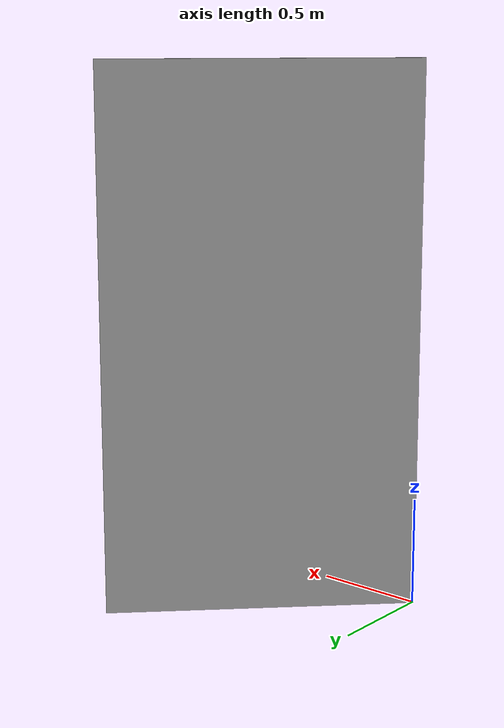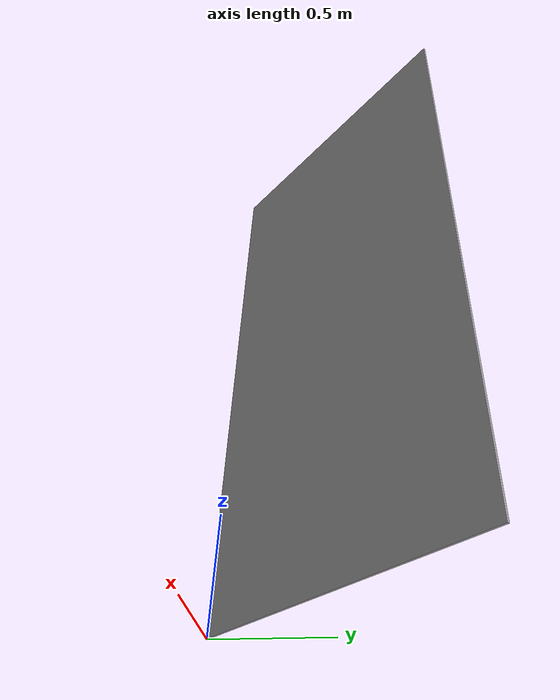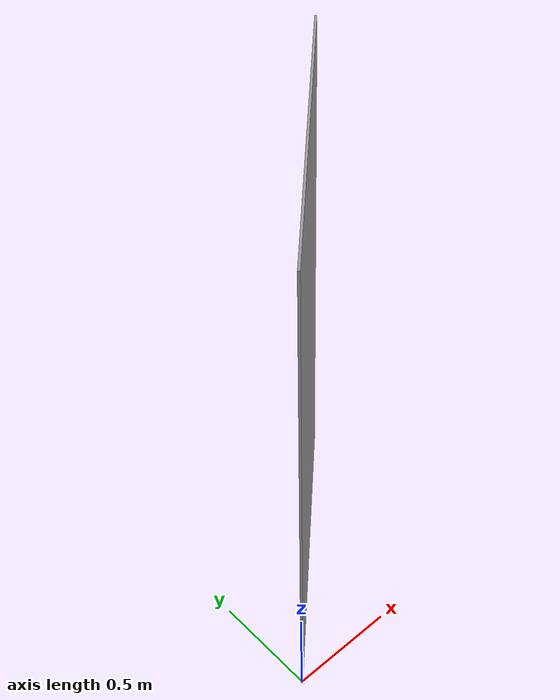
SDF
<?xml version='1.0'?>
<sdf version='1.7'>
  <model name='Wall'>
    <pose>0.5 0.5 0 0 -0 0</pose>
    <link name='Wall_0'>
      <collision name='Wall_0_Collision'>
        <geometry>
          <box>
            <size>1.42421 0.01 2.5</size>
          </box>
        </geometry>
        <pose>0 0 1.25 0 -0 0</pose>
      </collision>
      <visual name='Wall_0_Visual'>
        <pose>0 0 1.25 0 -0 0</pose>
        <geometry>
          <box>
            <size>1.42421 0.01 2.5</size>
          </box>
        </geometry>
        <material>
          <script>
            <uri>file://media/materials/scripts/gazebo.material</uri>
            <name>Gazebo/Grey</name>
          </script>
          <ambient>1 1 1 1</ambient>
        </material>
        <meta>
          <layer>0</layer>
        </meta>
      </visual>
      <pose>-0 0 0 0 -0 0.785398</pose>
    </link>
    <static>1</static>
  </model>
</sdf>
